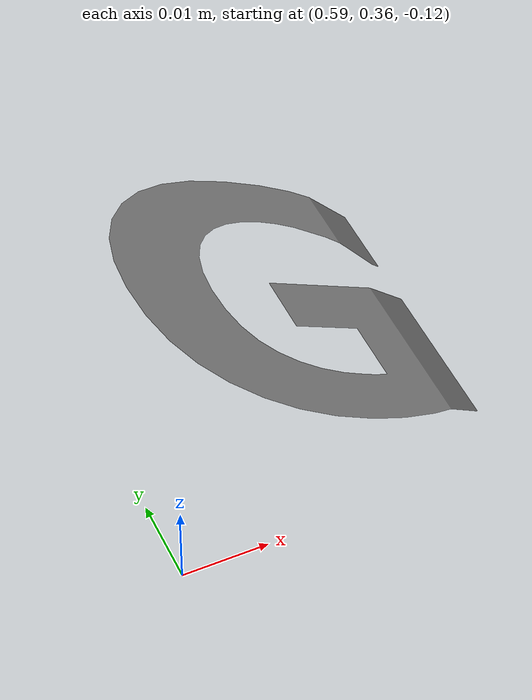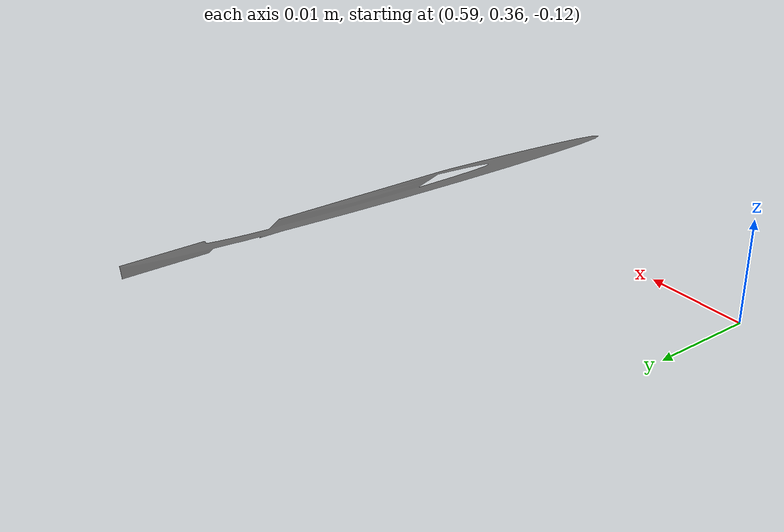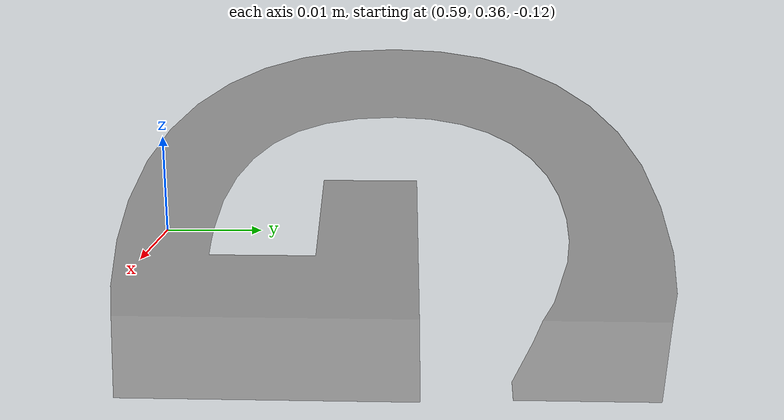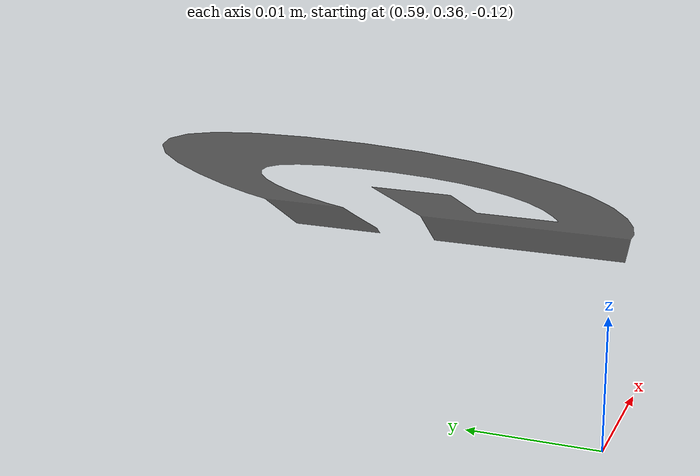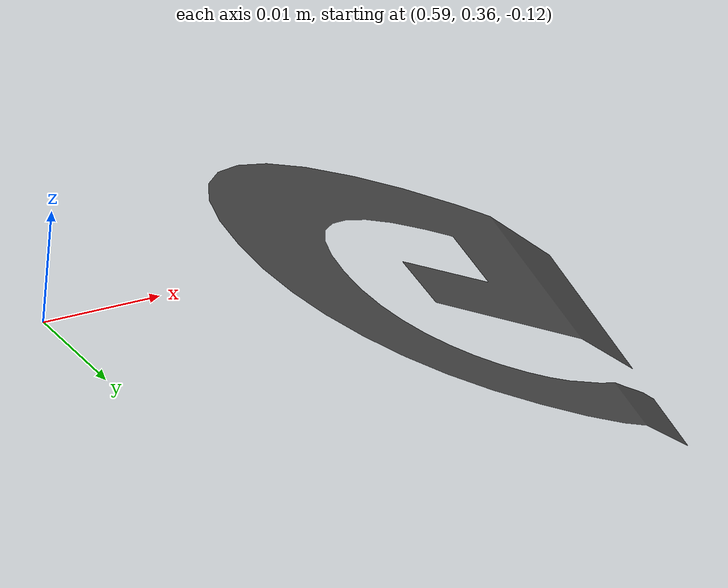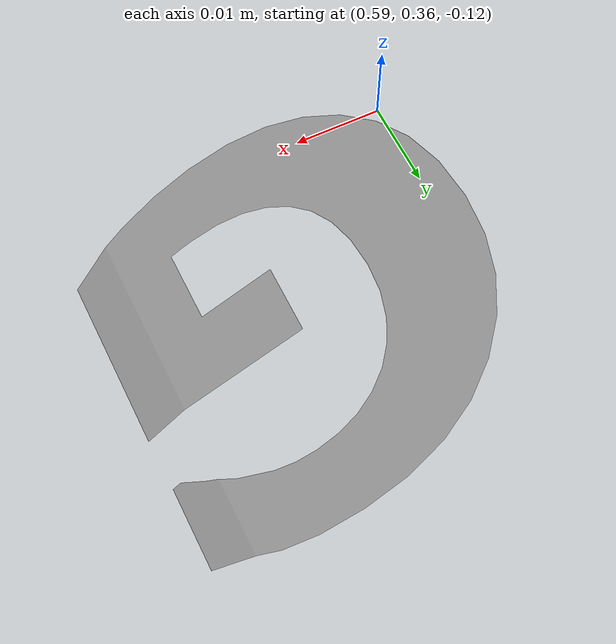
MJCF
<mujoco model="original-119">
  <default>
    <default class="visual">
      <geom group="2" type="mesh" contype="0" conaffinity="0"/>
    </default>
    <default class="collision">
      <geom group="3" type="mesh"/>
    </default>
  </default>
  <asset>
    <material name="material_0_0" specular="0.06666666666666667" shininess="0.03" rgba="0.5294117647058824 0.5294117647058824 0.5294117647058824 1"/>
    <mesh file="original-119.obj"/>
  </asset>
  <worldbody>
    <body name="original-119">
      <geom material="material_0_0" mesh="original-119" class="visual"/>
      <geom mesh="original-119" class="collision"/>
    </body>
  </worldbody>
</mujoco>
